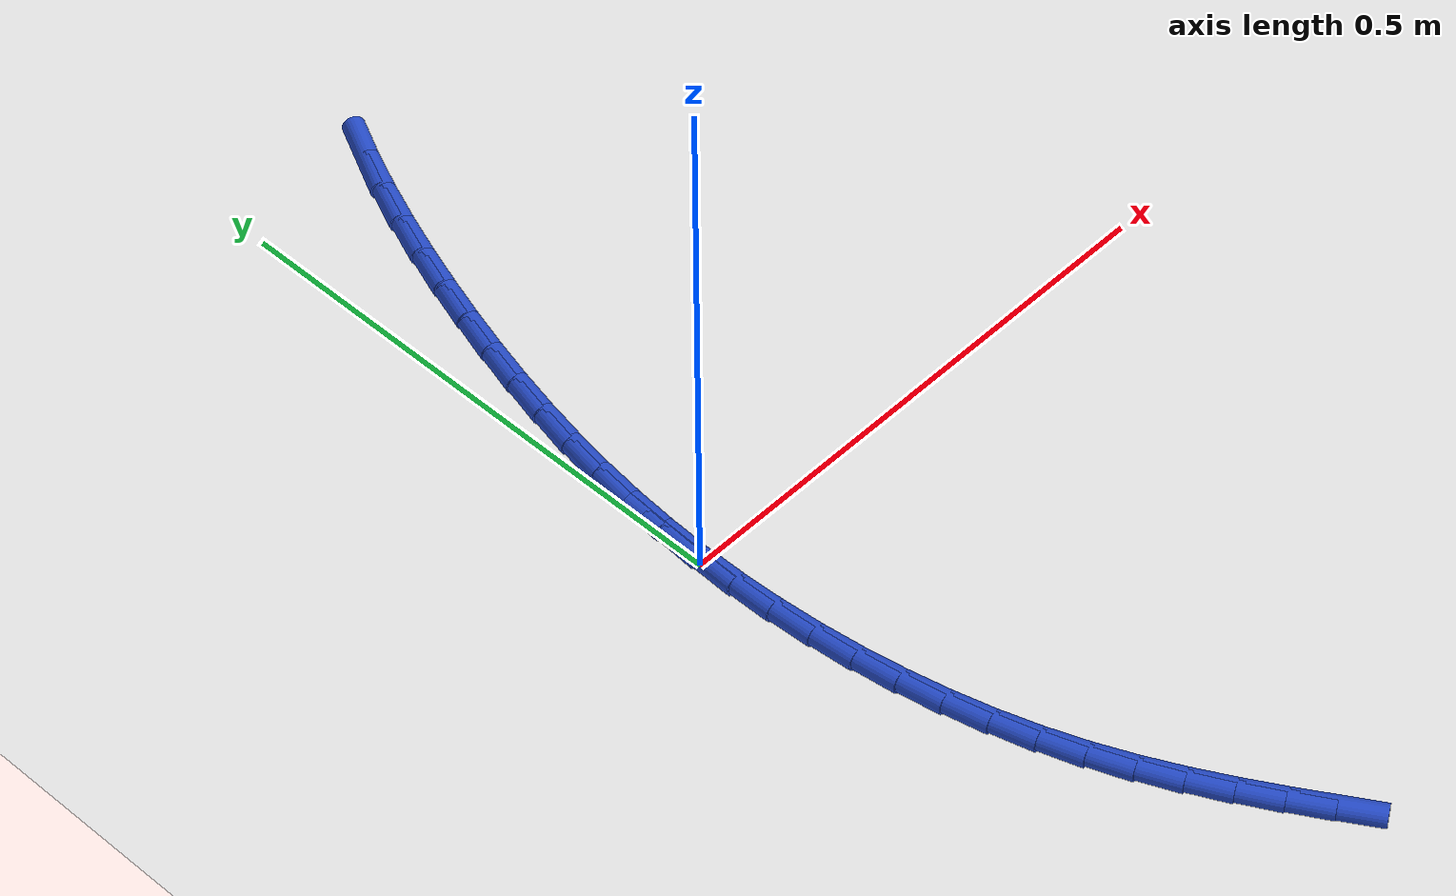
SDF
<sdf version="1.6">
 <world name="default">
  <model name="ground_plane">
   <static>1</static>
   <link name="link">
    <collision name="collision">
     <geometry><plane><normal>0 0 1</normal><size>100 100</size></plane></geometry>
     <surface><friction><ode><mu>100</mu><mu2>50</mu2></ode></friction></surface>
    </collision>
    <visual name="visual">
     <cast_shadows>0</cast_shadows>
     <geometry><plane><normal>0 0 1</normal><size>100 100</size></plane></geometry>
     <material>
      <script><uri>file://media/materials/scripts/gazebo.material</uri><name>Gazebo/WhiteGlow</name></script>
     </material>
    </visual>
   </link>
  </model>
  <model name="line">
   <link name="link_0">
    <pose>1.214306433183765e-17 -4.163336342344337e-17 0.01 0 1.57 1.5359745579268451</pose>
    <collision name="collision">
     <geometry><cylinder><radius>0.01</radius><length>0.08</length></cylinder></geometry>
    </collision>
    <visual name="visual">
     <material>
      <script><name>Gazebo/Blue</name><uri>file://media/materials/scripts/gazebo.material</uri></script>
     </material>
     <geometry><cylinder><radius>0.01</radius><length>0.08</length></cylinder></geometry>
    </visual>
   </link>
   <link name="link_1">
    <pose>0.0013670674124619576 0.03924311899716643 0.01 0 1.57 1.4958907788421167</pose>
    <collision name="collision">
     <geometry><cylinder><radius>0.01</radius><length>0.08</length></cylinder></geometry>
    </collision>
    <visual name="visual">
     <material>
      <script><name>Gazebo/Blue</name><uri>file://media/materials/scripts/gazebo.material</uri></script>
     </material>
     <geometry><cylinder><radius>0.01</radius><length>0.08</length></cylinder></geometry>
    </visual>
   </link>
   <link name="link_2">
    <pose>0.004291375581555543 0.07821001698789096 0.01 0 1.57 1.457501562232395</pose>
    <collision name="collision">
     <geometry><cylinder><radius>0.01</radius><length>0.08</length></cylinder></geometry>
    </collision>
    <visual name="visual">
     <material>
      <script><name>Gazebo/Blue</name><uri>file://media/materials/scripts/gazebo.material</uri></script>
     </material>
     <geometry><cylinder><radius>0.01</radius><length>0.08</length></cylinder></geometry>
    </visual>
   </link>
   <link name="link_3">
    <pose>0.008700508661983042 0.11696072324996809 0.01 0 1.57 1.4210864554015243</pose>
    <collision name="collision">
     <geometry><cylinder><radius>0.01</radius><length>0.08</length></cylinder></geometry>
    </collision>
    <visual name="visual">
     <material>
      <script><name>Gazebo/Blue</name><uri>file://media/materials/scripts/gazebo.material</uri></script>
     </material>
     <geometry><cylinder><radius>0.01</radius><length>0.08</length></cylinder></geometry>
    </visual>
   </link>
   <link name="link_4">
    <pose>0.014522050808446754 0.15555526706119238 0.01 0 1.57 1.3868769630578819</pose>
    <collision name="collision">
     <geometry><cylinder><radius>0.01</radius><length>0.08</length></cylinder></geometry>
    </collision>
    <visual name="visual">
     <material>
      <script><name>Gazebo/Blue</name><uri>file://media/materials/scripts/gazebo.material</uri></script>
     </material>
     <geometry><cylinder><radius>0.01</radius><length>0.08</length></cylinder></geometry>
    </visual>
   </link>
   <link name="link_5">
    <pose>0.02168358617564896 0.19405367769935844 0.01 0 1.57 1.3550544888897538</pose>
    <collision name="collision">
     <geometry><cylinder><radius>0.01</radius><length>0.08</length></cylinder></geometry>
    </collision>
    <visual name="visual">
     <material>
      <script><name>Gazebo/Blue</name><uri>file://media/materials/scripts/gazebo.material</uri></script>
     </material>
     <geometry><cylinder><radius>0.01</radius><length>0.08</length></cylinder></geometry>
    </visual>
   </link>
   <link name="link_6">
    <pose>0.030112698918291936 0.23251598444226076 0.01 0 1.57 1.325751239393104</pose>
    <collision name="collision">
     <geometry><cylinder><radius>0.01</radius><length>0.08</length></cylinder></geometry>
    </collision>
    <visual name="visual">
     <material>
      <script><name>Gazebo/Blue</name><uri>file://media/materials/scripts/gazebo.material</uri></script>
     </material>
     <geometry><cylinder><radius>0.01</radius><length>0.08</length></cylinder></geometry>
    </visual>
   </link>
   <link name="link_7">
    <pose>0.039736973191077996 0.2710022165676941 0.01 0 1.57 1.2990534518479906</pose>
    <collision name="collision">
     <geometry><cylinder><radius>0.01</radius><length>0.08</length></cylinder></geometry>
    </collision>
    <visual name="visual">
     <material>
      <script><name>Gazebo/Blue</name><uri>file://media/materials/scripts/gazebo.material</uri></script>
     </material>
     <geometry><cylinder><radius>0.01</radius><length>0.08</length></cylinder></geometry>
    </visual>
   </link>
   <link name="link_8">
    <pose>0.0504839931487094 0.30957240335345276 0.01 0 1.57 1.2750011313172676</pose>
    <collision name="collision">
     <geometry><cylinder><radius>0.01</radius><length>0.08</length></cylinder></geometry>
    </collision>
    <visual name="visual">
     <material>
      <script><name>Gazebo/Blue</name><uri>file://media/materials/scripts/gazebo.material</uri></script>
     </material>
     <geometry><cylinder><radius>0.01</radius><length>0.08</length></cylinder></geometry>
    </visual>
   </link>
   <link name="link_9">
    <pose>0.06228148042419873 0.3482863198934669 0.01 0 1.57 1.2517160915492758</pose>
    <collision name="collision">
     <geometry><cylinder><radius>0.01</radius><length>0.08</length></cylinder></geometry>
    </collision>
    <visual name="visual">
     <material>
      <script><name>Gazebo/Blue</name><uri>file://media/materials/scripts/gazebo.material</uri></script>
     </material>
     <geometry><cylinder><radius>0.01</radius><length>0.08</length></cylinder></geometry>
    </visual>
   </link>
   <link name="link_10">
    <pose>0.07510770927820831 0.38711027444879925 0.01 0 1.57 1.224357988568602</pose>
    <collision name="collision">
     <geometry><cylinder><radius>0.01</radius><length>0.08</length></cylinder></geometry>
    </collision>
    <visual name="visual">
     <material>
      <script><name>Gazebo/Blue</name><uri>file://media/materials/scripts/gazebo.material</uri></script>
     </material>
     <geometry><cylinder><radius>0.01</radius><length>0.08</length></cylinder></geometry>
    </visual>
   </link>
   <link name="link_11">
    <pose>0.08906669449681354 0.42577809342506967 0.01 0 1.57 1.1918479280093806</pose>
    <collision name="collision">
     <geometry><cylinder><radius>0.01</radius><length>0.08</length></cylinder></geometry>
    </collision>
    <visual name="visual">
     <material>
      <script><name>Gazebo/Blue</name><uri>file://media/materials/scripts/gazebo.material</uri></script>
     </material>
     <geometry><cylinder><radius>0.01</radius><length>0.08</length></cylinder></geometry>
    </visual>
   </link>
   <link name="link_12">
    <pose>0.10428167143485165 0.4639880662880472 0.01 0 1.57 1.1536969208143462</pose>
    <collision name="collision">
     <geometry><cylinder><radius>0.01</radius><length>0.08</length></cylinder></geometry>
    </collision>
    <visual name="visual">
     <material>
      <script><name>Gazebo/Blue</name><uri>file://media/materials/scripts/gazebo.material</uri></script>
     </material>
     <geometry><cylinder><radius>0.01</radius><length>0.08</length></cylinder></geometry>
    </visual>
   </link>
   <link name="link_13">
    <pose>0.12087587544716 0.5014384825035014 0.01 0 1.57 1.1093035010048757</pose>
    <collision name="collision">
     <geometry><cylinder><radius>0.01</radius><length>0.08</length></cylinder></geometry>
    </collision>
    <visual name="visual">
     <material>
      <script><name>Gazebo/Blue</name><uri>file://media/materials/scripts/gazebo.material</uri></script>
     </material>
     <geometry><cylinder><radius>0.01</radius><length>0.08</length></cylinder></geometry>
    </visual>
   </link>
   <link name="link_166">
    <pose>0.15358835278895716 -0.5173171838597203 0.01 0 1.57 -1.0182510830714477</pose>
    <collision name="collision">
     <geometry><cylinder><radius>0.01</radius><length>0.08</length></cylinder></geometry>
    </collision>
    <visual name="visual">
     <material>
      <script><name>Gazebo/Blue</name><uri>file://media/materials/scripts/gazebo.material</uri></script>
     </material>
     <geometry><cylinder><radius>0.01</radius><length>0.08</length></cylinder></geometry>
    </visual>
   </link>
   <link name="link_167">
    <pose>0.13310880124402613 -0.4841041931515378 0.01 0 1.57 -1.040532044491382</pose>
    <collision name="collision">
     <geometry><cylinder><radius>0.01</radius><length>0.08</length></cylinder></geometry>
    </collision>
    <visual name="visual">
     <material>
      <script><name>Gazebo/Blue</name><uri>file://media/materials/scripts/gazebo.material</uri></script>
     </material>
     <geometry><cylinder><radius>0.01</radius><length>0.08</length></cylinder></geometry>
    </visual>
   </link>
   <link name="link_168">
    <pose>0.11358307620524648 -0.45079930659403594 0.01 0 1.57 -1.070900304191763</pose>
    <collision name="collision">
     <geometry><cylinder><radius>0.01</radius><length>0.08</length></cylinder></geometry>
    </collision>
    <visual name="visual">
     <material>
      <script><name>Gazebo/Blue</name><uri>file://media/materials/scripts/gazebo.material</uri></script>
     </material>
     <geometry><cylinder><radius>0.01</radius><length>0.08</length></cylinder></geometry>
    </visual>
   </link>
   <link name="link_169">
    <pose>0.09520388236427721 -0.4171481021005858 0.01 0 1.57 -1.1091597143437266</pose>
    <collision name="collision">
     <geometry><cylinder><radius>0.01</radius><length>0.08</length></cylinder></geometry>
    </collision>
    <visual name="visual">
     <material>
      <script><name>Gazebo/Blue</name><uri>file://media/materials/scripts/gazebo.material</uri></script>
     </material>
     <geometry><cylinder><radius>0.01</radius><length>0.08</length></cylinder></geometry>
    </visual>
   </link>
   <link name="link_170">
    <pose>0.07816392441277707 -0.3828961575845582 0.01 0 1.57 -1.1548372821313655</pose>
    <collision name="collision">
     <geometry><cylinder><radius>0.01</radius><length>0.08</length></cylinder></geometry>
    </collision>
    <visual name="visual">
     <material>
      <script><name>Gazebo/Blue</name><uri>file://media/materials/scripts/gazebo.material</uri></script>
     </material>
     <geometry><cylinder><radius>0.01</radius><length>0.08</length></cylinder></geometry>
    </visual>
   </link>
   <link name="link_171">
    <pose>0.06265590704240573 -0.34778905095932555 0.01 0 1.57 -1.206269794965851</pose>
    <collision name="collision">
     <geometry><cylinder><radius>0.01</radius><length>0.08</length></cylinder></geometry>
    </collision>
    <visual name="visual">
     <material>
      <script><name>Gazebo/Blue</name><uri>file://media/materials/scripts/gazebo.material</uri></script>
     </material>
     <geometry><cylinder><radius>0.01</radius><length>0.08</length></cylinder></geometry>
    </visual>
   </link>
   <link name="link_172">
    <pose>0.04885220202402037 -0.311613881513855 0.01 0 1.57 -1.2571708026703199</pose>
    <collision name="collision">
     <geometry><cylinder><radius>0.01</radius><length>0.08</length></cylinder></geometry>
    </collision>
    <visual name="visual">
     <material>
      <script><name>Gazebo/Blue</name><uri>file://media/materials/scripts/gazebo.material</uri></script>
     </material>
     <geometry><cylinder><radius>0.01</radius><length>0.08</length></cylinder></geometry>
    </visual>
   </link>
   <link name="link_173">
    <pose>0.03679216362122037 -0.27442938043563103 0.01 0 1.57 -1.305528595570134</pose>
    <collision name="collision">
     <geometry><cylinder><radius>0.01</radius><length>0.08</length></cylinder></geometry>
    </collision>
    <visual name="visual">
     <material>
      <script><name>Gazebo/Blue</name><uri>file://media/materials/scripts/gazebo.material</uri></script>
     </material>
     <geometry><cylinder><radius>0.01</radius><length>0.08</length></cylinder></geometry>
    </visual>
   </link>
   <link name="link_174">
    <pose>0.026461667837567607 -0.23640348559930938 0.01 0 1.57 -1.3517473876024866</pose>
    <collision name="collision">
     <geometry><cylinder><radius>0.01</radius><length>0.08</length></cylinder></geometry>
    </collision>
    <visual name="visual">
     <material>
      <script><name>Gazebo/Blue</name><uri>file://media/materials/scripts/gazebo.material</uri></script>
     </material>
     <geometry><cylinder><radius>0.01</radius><length>0.08</length></cylinder></geometry>
    </visual>
   </link>
   <link name="link_175">
    <pose>0.01784644524203098 -0.1977044318680807 0.01 0 1.57 -1.3962262988936853</pose>
    <collision name="collision">
     <geometry><cylinder><radius>0.01</radius><length>0.08</length></cylinder></geometry>
    </collision>
    <visual name="visual">
     <material>
      <script><name>Gazebo/Blue</name><uri>file://media/materials/scripts/gazebo.material</uri></script>
     </material>
     <geometry><cylinder><radius>0.01</radius><length>0.08</length></cylinder></geometry>
    </visual>
   </link>
   <link name="link_176">
    <pose>0.010932226403579205 -0.1585004541051345 0.01 0 1.57 -1.4393533179097107</pose>
    <collision name="collision">
     <geometry><cylinder><radius>0.01</radius><length>0.08</length></cylinder></geometry>
    </collision>
    <visual name="visual">
     <material>
      <script><name>Gazebo/Blue</name><uri>file://media/materials/scripts/gazebo.material</uri></script>
     </material>
     <geometry><cylinder><radius>0.01</radius><length>0.08</length></cylinder></geometry>
    </visual>
   </link>
   <link name="link_177">
    <pose>0.005704741891181446 -0.11895978717366329 0.01 0 1.57 -1.4815078435356819</pose>
    <collision name="collision">
     <geometry><cylinder><radius>0.01</radius><length>0.08</length></cylinder></geometry>
    </collision>
    <visual name="visual">
     <material>
      <script><name>Gazebo/Blue</name><uri>file://media/materials/scripts/gazebo.material</uri></script>
     </material>
     <geometry><cylinder><radius>0.01</radius><length>0.08</length></cylinder></geometry>
    </visual>
   </link>
   <link name="link_178">
    <pose>0.002149722273806414 -0.07925066593685673 0.01 0 1.57 -1.52306490145205</pose>
    <collision name="collision">
     <geometry><cylinder><radius>0.01</radius><length>0.08</length></cylinder></geometry>
    </collision>
    <visual name="visual">
     <material>
      <script><name>Gazebo/Blue</name><uri>file://media/materials/scripts/gazebo.material</uri></script>
     </material>
     <geometry><cylinder><radius>0.01</radius><length>0.08</length></cylinder></geometry>
    </visual>
   </link>
   <link name="link_179">
    <pose>0.00025289812042297855 -0.039541325257905484 0.01 0 1.57 -1.5644006212768324</pose>
    <collision name="collision">
     <geometry><cylinder><radius>0.01</radius><length>0.08</length></cylinder></geometry>
    </collision>
    <visual name="visual">
     <material>
      <script><name>Gazebo/Blue</name><uri>file://media/materials/scripts/gazebo.material</uri></script>
     </material>
     <geometry><cylinder><radius>0.01</radius><length>0.08</length></cylinder></geometry>
    </visual>
   </link>
   <link name="link_180">
    <pose>1.214306433183765e-17 -1.5959455978986625e-16 0.01 0 1.57 1.5356939079208276</pose>
    <collision name="collision">
     <geometry><cylinder><radius>0.01</radius><length>0.08</length></cylinder></geometry>
    </collision>
    <visual name="visual">
     <material>
      <script><name>Gazebo/Blue</name><uri>file://media/materials/scripts/gazebo.material</uri></script>
     </material>
     <geometry><cylinder><radius>0.01</radius><length>0.08</length></cylinder></geometry>
    </visual>
   </link>
   <link name="link_181">
    <pose>0.0013767584815063804 0.03920507497366865 0.01 0 1.57 1.5356939079208276</pose>
    <collision name="collision">
     <geometry><cylinder><radius>0.01</radius><length>0.08</length></cylinder></geometry>
    </collision>
    <visual name="visual">
     <material>
      <script><name>Gazebo/Blue</name><uri>file://media/materials/scripts/gazebo.material</uri></script>
     </material>
     <geometry><cylinder><radius>0.01</radius><length>0.08</length></cylinder></geometry>
    </visual>
   </link>
  </model>
 </world>
</sdf>
